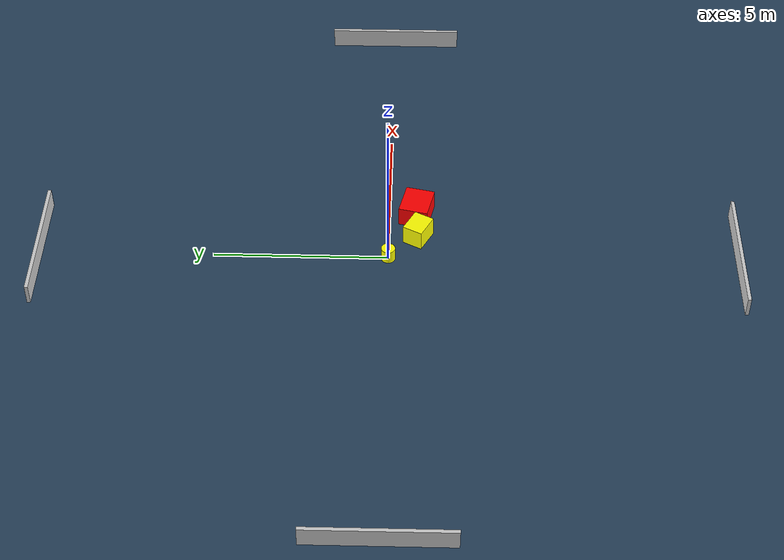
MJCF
<?xml version="1.0" ?>
<mujoco model="generated_environment">
  <option timestep="0.01" integrator="RK4" cone="elliptic"/>
  <default>
    <geom density="1"/>
  </default>
  <asset>
    <texture builtin="gradient" height="3072" name="skybox" rgb1="0.3 0.5 0.7" rgb2="0 0 0" type="skybox" width="512"/>
    <texture builtin="checker" height="300" name="groundplane" rgb1="0.2 0.3 0.4" rgb2="0.1 0.2 0.3" type="2d" width="300"/>
    <material name="groundplane" reflectance="0.2" texrepeat="5 5" texture="groundplane"/>
  </asset>
  <worldbody>
    <light dir="0 0 -1" directional="true" pos="0 0 1.5"/>
    <geom condim="3" friction="0.5 0.005 0.001" material="groundplane" name="floor" pos="0 0 0" size="0 0 0.05" type="plane"/>
    <body name="walls">
      <geom name="wall_1" condim="4" pos="-10.0 0.0 0.3" rgba="0.800000011920929 0.800000011920929 0.800000011920929 1.0" size="0.05 2.0 0.3" type="box"/>
      <geom name="wall_2" condim="4" pos="10.0 0.0 0.3" rgba="0.800000011920929 0.800000011920929 0.800000011920929 1.0" size="0.05 2.0 0.3" type="box"/>
      <geom name="wall_3" condim="4" pos="0.0 -10.0 0.3" rgba="0.800000011920929 0.800000011920929 0.800000011920929 1.0" size="2.0 0.05 0.3" type="box"/>
      <geom name="wall_4" condim="4" pos="0.0 10.0 0.3" rgba="0.800000011920929 0.800000011920929 0.800000011920929 1.0" size="2.0 0.05 0.3" type="box"/>
    </body>
    <body name="robot">
      <joint name="joint_x" type="slide" pos="0 0 0" axis="1 0 0"/>
      <joint name="joint_y" type="slide" pos="0 0 0" axis="0 1 0"/>
      <geom name="robot" type="cylinder" pos="0.0 0.0 0.2" size="0.2 0.2 0.0" mass="5.0" friction="1.0 0.005 0.0001" condim="4" rgba="1.0 1.0 0.0 1.0"/>
    </body>
    <body name="obstacle_1_movable">
      <geom name="obstacle_1_movable" condim="4" pos="0.8636803836264284 -0.8449934070241237 0.3" euler="0 0 242.0232679816276" friction="0.0 0.005 0.001" rgba="1.0 1.0 0.0 1.0" size="0.2966200542536541 0.3661483830417346 0.3" type="box" mass="0.1"/>
      <joint type="free"/>
    </body>
    <body name="obstacle_2_static">
      <geom name="obstacle_2_static" condim="4" pos="1.8203247886678726 -0.789254301078199 0.3" euler="0 0 257.14266686463327" friction="0.0 0.005 0.001" rgba="1.0 0.0 0.0 1.0" size="0.42259615492948627 0.48645529460055714 0.3" type="box"/>
    </body>
  </worldbody>
  <actuator>
    <motor name="actuator_x" joint="joint_x" gear="1" ctrlrange="-1 1"/>
    <motor name="actuator_y" joint="joint_y" gear="1" ctrlrange="-1 1"/>
  </actuator>
</mujoco>
